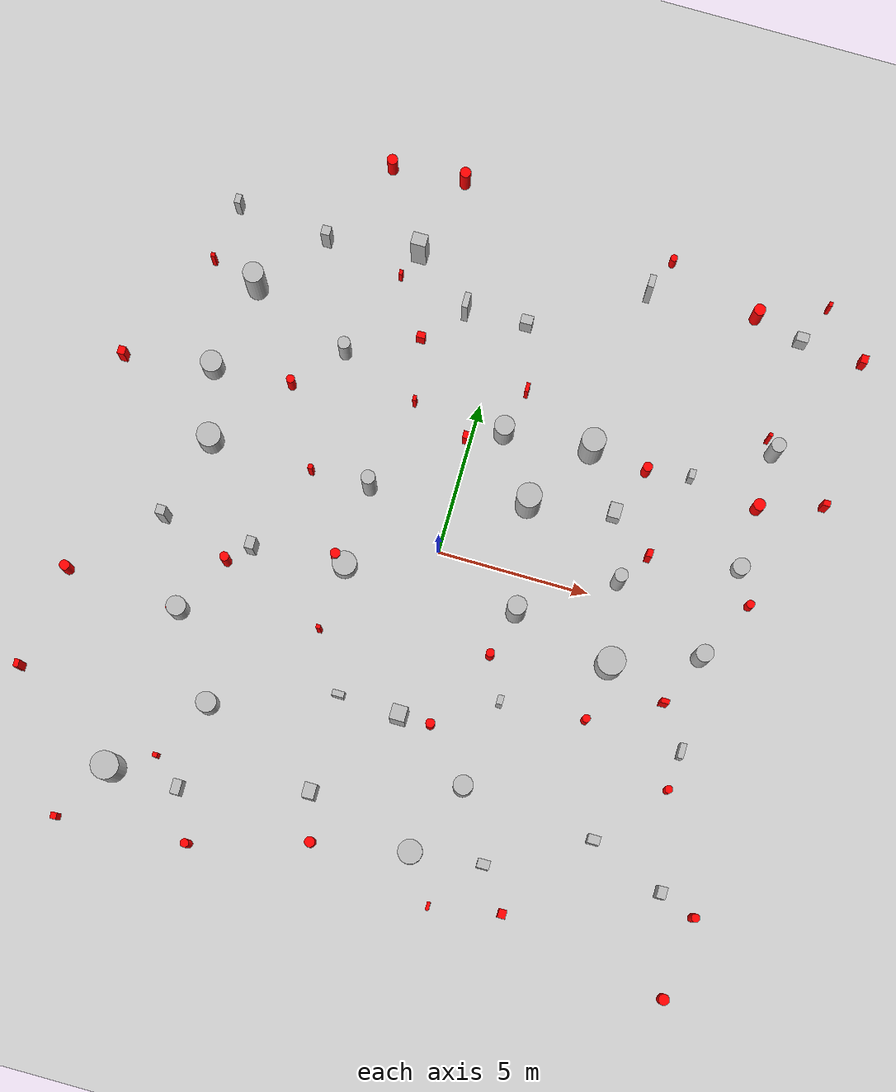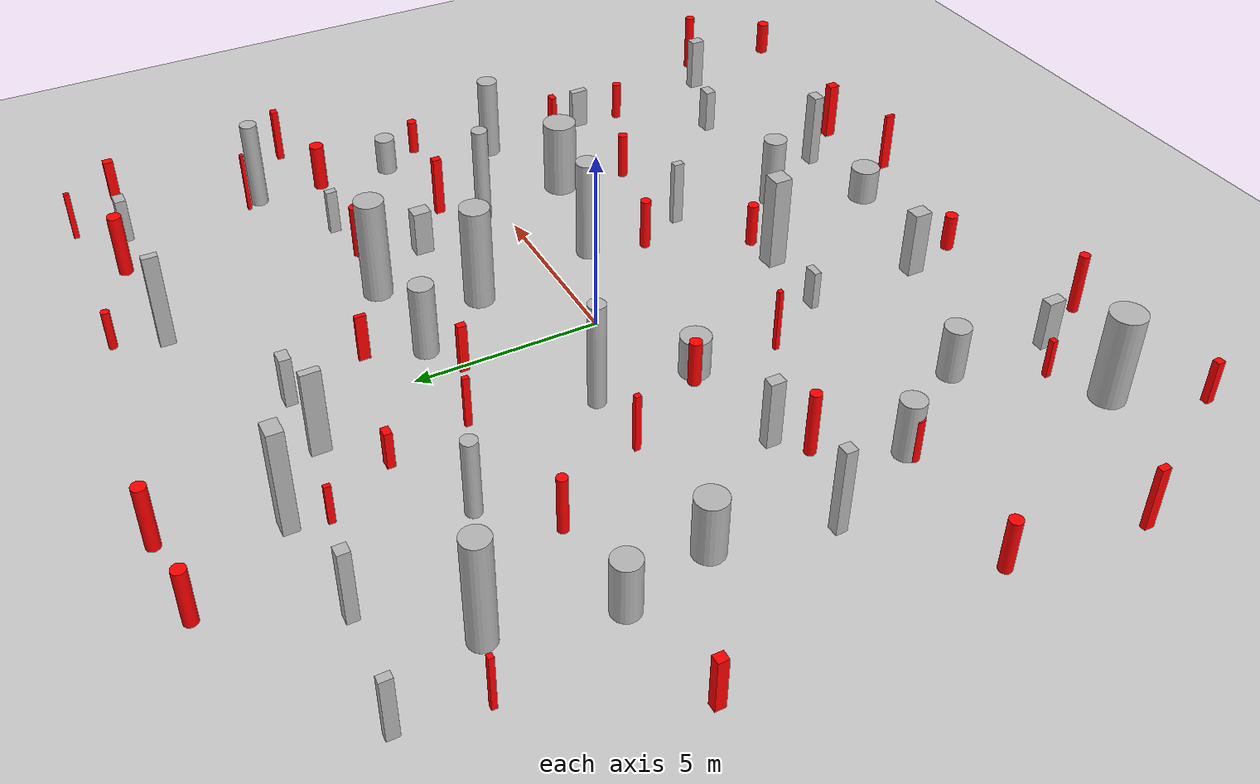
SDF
<sdf version="1.7">
 <world name="default">
  <model name="ground_plane">
   <static>1</static>
   <link name="link">
    <collision name="collision">
     <geometry><plane><normal>0 0 1</normal><size>100 100</size></plane></geometry>
     <surface>
      <contact><collide_bitmask>65535</collide_bitmask></contact>
      <friction><ode><mu>100</mu><mu2>50</mu2></ode></friction>
     </surface>
    </collision>
    <visual name="visual">
     <cast_shadows>0</cast_shadows>
     <geometry><plane><normal>0 0 1</normal><size>100 100</size></plane></geometry>
     <material>
      <script><uri>file://media/materials/scripts/gazebo.material</uri><name>Gazebo/Grey</name></script>
     </material>
    </visual>
   </link>
  </model>
  <model name="cylinder_0_0.7_0.7_2.1">
   <static>true</static>
   <pose>0.9762700785464951 4.30378732744839 1.0448831829968968 0 0 0</pose>
   <link name="link">
    <visual name="visual">
     <geometry>
      <cylinder><radius>0.3270964398016714</radius><length>2.0897663659937935</length></cylinder>
     </geometry>
    </visual>
   </link>
  </model>
  <model name="cylinder_1_0.6_0.6_2.9">
   <static>true</static>
   <pose>2.917882261333123 -1.2482557747461502 1.4636627605010293 0 0 0</pose>
   <link name="link">
    <visual name="visual">
     <geometry>
      <cylinder><radius>0.3150324556477333</radius><length>2.9273255210020586</length></cylinder>
     </geometry>
    </visual>
   </link>
  </model>
  <model name="cylinder_2_0.4_0.4_2.9">
   <static>true</static>
   <pose>5.834500761653292 0.5778983950580887 1.425596638292661 0 0 0</pose>
   <link name="link">
    <visual name="visual">
     <geometry>
      <cylinder><radius>0.2213108174593661</radius><length>2.851193276585322</length></cylinder>
     </geometry>
    </visual>
   </link>
  </model>
  <model name="cylinder_3_0.9_0.9_2.6">
   <static>true</static>
   <pose>-8.257414005969185 -9.595632051193485 1.2781567509498504 0 0 0</pose>
   <link name="link">
    <visual name="visual">
     <geometry>
      <cylinder><radius>0.46100364447404574</radius><length>2.5563135018997007</length></cylinder>
     </geometry>
    </visual>
   </link>
  </model>
  <model name="cylinder_4_0.5_0.5_2.6">
   <static>true</static>
   <pose>9.572366844655281 5.983171284334471 1.2805291762864555 0 0 0</pose>
   <link name="link">
    <visual name="visual">
     <geometry>
      <cylinder><radius>0.23548232776067998</radius><length>2.561058352572911</length></cylinder>
     </geometry>
    </visual>
   </link>
  </model>
  <model name="cylinder_5_0.6_0.6_2.0">
   <static>true</static>
   <pose>2.798420426550477 -7.132934251819072 1.0218483217500718 0 0 0</pose>
   <link name="link">
    <visual name="visual">
     <geometry>
      <cylinder><radius>0.3243985819971571</radius><length>2.0436966435001436</length></cylinder>
     </geometry>
    </visual>
   </link>
  </model>
  <model name="cylinder_6_0.4_0.4_2.1">
   <static>true</static>
   <pose>-4.70888775790746 5.484673788684333 1.0684339488686485 0 0 0</pose>
   <link name="link">
    <visual name="visual">
     <geometry>
      <cylinder><radius>0.20563694013090655</radius><length>2.136867897737297</length></cylinder>
     </geometry>
    </visual>
   </link>
  </model>
  <model name="cylinder_7_0.8_0.8_2.9">
   <static>true</static>
   <pose>2.352709941517542 2.2419144544484286 1.4437480785146242 0 0 0</pose>
   <link name="link">
    <visual name="visual">
     <geometry>
      <cylinder><radius>0.404546089731045</radius><length>2.8874961570292483</length></cylinder>
     </geometry>
    </visual>
   </link>
  </model>
  <model name="cylinder_8_0.8_0.8_1.1">
   <static>true</static>
   <pose>-2.80984198852428 -1.259360924013171 0.5602254716292698 0 0 0</pose>
   <link name="link">
    <visual name="visual">
     <geometry>
      <cylinder><radius>0.4000300146337003</radius><length>1.1204509432585397</length></cylinder>
     </geometry>
    </visual>
   </link>
  </model>
  <model name="cylinder_9_0.5_0.5_3.0">
   <static>true</static>
   <pose>-2.725784581147548 1.4039354083575937 1.4883738380592262 0 0 0</pose>
   <link name="link">
    <visual name="visual">
     <geometry>
      <cylinder><radius>0.23061344322440844</radius><length>2.9767476761184524</length></cylinder>
     </geometry>
    </visual>
   </link>
  </model>
  <model name="cylinder_10_0.7_0.7_1.5">
   <static>true</static>
   <pose>-5.822464878103306 -6.773809642300074 0.7532916025397821 0 0 0</pose>
   <link name="link">
    <visual name="visual">
     <geometry>
      <cylinder><radius>0.3398932318568919</radius><length>1.5065832050795642</length></cylinder>
     </geometry>
    </visual>
   </link>
  </model>
  <model name="cylinder_11_0.7_0.7_3.0">
   <static>true</static>
   <pose>-8.057974484138775 6.758898149976076 1.4764594650133958 0 0 0</pose>
   <link name="link">
    <visual name="visual">
     <geometry>
      <cylinder><radius>0.3405953604943105</radius><length>2.9529189300267915</length></cylinder>
     </geometry>
    </visual>
   </link>
  </model>
  <model name="cylinder_12_0.6_0.6_1.1">
   <static>true</static>
   <pose>9.535221763806742 2.0969103949009202 0.5391877922543207 0 0 0</pose>
   <link name="link">
    <visual name="visual">
     <geometry>
      <cylinder><radius>0.2848420887729229</radius><length>1.0783755845086413</length></cylinder>
     </geometry>
    </visual>
   </link>
  </model>
  <model name="cylinder_13_0.6_0.6_1.6">
   <static>true</static>
   <pose>-7.596068775736622 -4.077196049557101 0.817983179393976 0 0 0</pose>
   <link name="link">
    <visual name="visual">
     <geometry><cylinder><radius>0.324278898354401</radius><length>1.635966358787952</length></cylinder></geometry>
    </visual>
   </link>
  </model>
  <model name="cylinder_14_0.7_0.7_1.5">
   <static>true</static>
   <pose>-8.717050073024312 3.849442387400398 0.7653894909394454 0 0 0</pose>
   <link name="link">
    <visual name="visual">
     <geometry>
      <cylinder><radius>0.3569744160400099</radius><length>1.5307789818788908</length></cylinder>
     </geometry>
    </visual>
   </link>
  </model>
  <model name="cylinder_15_0.8_0.8_1.6">
   <static>true</static>
   <pose>-8.121189784831166 1.5189299111235854 0.8185689524513237 0 0 0</pose>
   <link name="link">
    <visual name="visual">
     <geometry>
      <cylinder><radius>0.4002231139891045</radius><length>1.6371379049026473</length></cylinder>
     </geometry>
    </visual>
   </link>
  </model>
  <model name="cylinder_16_0.8_0.8_1.0">
   <static>true</static>
   <pose>1.7302586962016626 -9.597849076250128 0.5046954761925471 0 0 0</pose>
   <link name="link">
    <visual name="visual">
     <geometry>
      <cylinder><radius>0.4033449610388691</radius><length>1.0093909523850941</length></cylinder>
     </geometry>
    </visual>
   </link>
  </model>
  <model name="cylinder_17_0.6_0.6_2.4">
   <static>true</static>
   <pose>9.054980230339702 -1.0574924276474533 1.1994792753175043 0 0 0</pose>
   <link name="link">
    <visual name="visual">
     <geometry>
      <cylinder><radius>0.2892310852565401</radius><length>2.3989585506350086</length></cylinder>
     </geometry>
    </visual>
   </link>
  </model>
  <model name="cylinder_18_0.9_0.9_2.2">
   <static>true</static>
   <pose>6.275956394049544 -2.0698851830603076 1.0812728726358587 0 0 0</pose>
   <link name="link">
    <visual name="visual">
     <geometry>
      <cylinder><radius>0.4645206085564558</radius><length>2.1625457452717174</length></cylinder>
     </geometry>
    </visual>
   </link>
  </model>
  <model name="cylinder_19_0.8_0.8_2.9">
   <static>true</static>
   <pose>3.850631801555318 4.50508559639281 1.4560836347232238 0 0 0</pose>
   <link name="link">
    <visual name="visual">
     <geometry>
      <cylinder><radius>0.3931970597688912</radius><length>2.9121672694464475</length></cylinder>
     </geometry>
    </visual>
   </link>
  </model>
  <model name="box_0_0.2_0.3_1.9">
   <static>true</static>
   <pose>3.2034707498537003 -4.198447855791119 0.9287687009457661 0 0 0</pose>
   <link name="link">
    <visual name="visual"><geometry><box><size>0.2 0.3 1.9</size></box></geometry></visual>
   </link>
  </model>
  <model name="box_1_0.2_0.5_2.4">
   <static>true</static>
   <pose>-1.2827014946874638 7.838467100313441 1.2038885835403663 0 0 0</pose>
   <link name="link">
    <visual name="visual"><geometry><box><size>0.2 0.5 2.4</size></box></geometry></visual>
   </link>
  </model>
  <model name="box_2_0.2_0.4_2.7">
   <static>true</static>
   <pose>4.2848259909822275 9.976940131357331 1.3681260573682144 0 0 0</pose>
   <link name="link">
    <visual name="visual"><geometry><box><size>0.2 0.4 2.7</size></box></geometry></visual>
   </link>
  </model>
  <model name="box_3_0.4_0.5_1.9">
   <static>true</static>
   <pose>-1.8563340554800067 -8.61666009089724 0.9535426826780689 0 0 0</pose>
   <link name="link">
    <visual name="visual"><geometry><box><size>0.4 0.5 1.9</size></box></geometry></visual>
   </link>
  </model>
  <model name="box_4_0.3_0.5_1.4">
   <static>true</static>
   <pose>-6.000069502071998 -9.62956411078772 0.7239246880603801 0 0 0</pose>
   <link name="link">
    <visual name="visual"><geometry><box><size>0.3 0.5 1.4</size></box></geometry></visual>
   </link>
  </model>
  <model name="box_5_0.4_0.3_2.2">
   <static>true</static>
   <pose>4.088288038470655 -9.363221409373843 1.1214784014997634 0 0 0</pose>
   <link name="link">
    <visual name="visual"><geometry><box><size>0.4 0.3 2.2</size></box></geometry></visual>
   </link>
  </model>
  <model name="box_6_0.3_0.3_2.0">
   <static>true</static>
   <pose>-6.276139882393277 8.887447799678672 0.9904588086175671 0 0 0</pose>
   <link name="link">
    <visual name="visual"><geometry><box><size>0.3 0.3 2.0</size></box></geometry></visual>
   </link>
  </model>
  <model name="box_7_0.3_0.3_2.4">
   <static>true</static>
   <pose>-8.839416793522489 -1.3116674888375854 1.1963434888154594 0 0 0</pose>
   <link name="link">
    <visual name="visual"><geometry><box><size>0.3 0.3 2.4</size></box></geometry></visual>
   </link>
  </model>
  <model name="box_8_0.4_0.3_1.4">
   <static>true</static>
   <pose>0.731584222174444 7.933425860806842 0.7168969843984739 0 0 0</pose>
   <link name="link">
    <visual name="visual"><geometry><box><size>0.4 0.3 1.4</size></box></geometry></visual>
   </link>
  </model>
  <model name="box_9_0.3_0.4_1.9">
   <static>true</static>
   <pose>-5.850598491177812 -1.5062906249698749 0.9635754243648107 0 0 0</pose>
   <link name="link">
    <visual name="visual"><geometry><box><size>0.3 0.4 1.9</size></box></geometry></visual>
   </link>
  </model>
  <model name="box_10_0.4_0.3_1.3">
   <static>true</static>
   <pose>7.277112118464629 -7.649362880759338 0.6320681063451533 0 0 0</pose>
   <link name="link">
    <visual name="visual"><geometry><box><size>0.4 0.3 1.3</size></box></geometry></visual>
   </link>
  </model>
  <model name="box_11_0.2_0.5_1.2">
   <static>true</static>
   <pose>9.23872757094458 -4.157049464149023 0.6002939422654978 0 0 0</pose>
   <link name="link">
    <visual name="visual"><geometry><box><size>0.2 0.5 1.2</size></box></geometry></visual>
   </link>
  </model>
  <model name="box_12_0.5_0.4_2.9">
   <static>true</static>
   <pose>-3.236820963263087 9.231403090829971 1.4493188224156814 0 0 0</pose>
   <link name="link">
    <visual name="visual"><geometry><box><size>0.5 0.4 2.9</size></box></geometry></visual>
   </link>
  </model>
  <model name="box_13_0.5_0.5_2.7">
   <static>true</static>
   <pose>0.22637965092912005 -5.513659420505215 1.3621915174216834 0 0 0</pose>
   <link name="link">
    <visual name="visual"><geometry><box><size>0.5 0.5 2.7</size></box></geometry></visual>
   </link>
  </model>
  <model name="box_14_0.4_0.2_1.1">
   <static>true</static>
   <pose>-1.8551765717238524 -5.355317156581146 0.5534271817868253 0 0 0</pose>
   <link name="link">
    <visual name="visual"><geometry><box><size>0.4 0.2 1.1</size></box></geometry></visual>
   </link>
  </model>
  <model name="box_15_0.2_0.3_1.3">
   <static>true</static>
   <pose>7.211023476575875 4.540885254226566 0.6314827992911276 0 0 0</pose>
   <link name="link">
    <visual name="visual"><geometry><box><size>0.2 0.3 1.3</size></box></geometry></visual>
   </link>
  </model>
  <model name="box_16_0.4_0.5_1.3">
   <static>true</static>
   <pose>5.135572854737784 2.721221108942826 0.6605388224852564 0 0 0</pose>
   <link name="link">
    <visual name="visual"><geometry><box><size>0.4 0.5 1.3</size></box></geometry></visual>
   </link>
  </model>
  <model name="box_17_0.2_0.3_1.7">
   <static>true</static>
   <pose>-9.333907469066077 9.17965443726947 0.8567068904025429 0 0 0</pose>
   <link name="link">
    <visual name="visual"><geometry><box><size>0.2 0.3 1.7</size></box></geometry></visual>
   </link>
  </model>
  <model name="box_18_0.4_0.3_1.3">
   <static>true</static>
   <pose>9.485124256361004 9.806900031217879 0.6629544260466054 0 0 0</pose>
   <link name="link">
    <visual name="visual"><geometry><box><size>0.4 0.3 1.3</size></box></geometry></visual>
   </link>
  </model>
  <model name="box_19_0.3_0.4_1.6">
   <static>true</static>
   <pose>9.78819554568863 -8.693915856964395 0.7883984973314939 0 0 0</pose>
   <link name="link">
    <visual name="visual"><geometry><box><size>0.3 0.4 1.6</size></box></geometry></visual>
   </link>
  </model>
  <model name="dynamic_cylinder_0_0.3_0.3_1.6">
   <static>true</static>
   <pose>-6.094483560216853 3.9806188214205047 0.7826298825091915 0 0 0</pose>
   <link name="link">
    <visual name="visual">
     <geometry>
      <cylinder><radius>0.13605455604858924</radius><length>1.565259765018383</length></cylinder>
     </geometry>
     <material><ambient>1 0 0 1</ambient><diffuse>1 0 0 1</diffuse><specular>0.5 0.5 0.5 1</specular></material>
    </visual>
   </link>
   <plugin name="obstacle_motion" filename="libobstaclePathPlugin.so">
    <orientation>false</orientation>
    <loop>0</loop>
    <velocity>0.551515</velocity>
    <path>
     <waypoint>-6.094483560216853 3.9806188214205047 0.7826298825091915</waypoint>
     <waypoint>-1.8218642775396177 1.3125074078740546 0.7826298825091915</waypoint>
    </path>
   </plugin>
  </model>
  <model name="dynamic_cylinder_1_0.4_0.4_1.8">
   <static>true</static>
   <pose>7.887765949337705 10.199205886876612 0.894196571057319 0 0 0</pose>
   <link name="link">
    <visual name="visual">
     <geometry>
      <cylinder><radius>0.1904948345549927</radius><length>1.788393142114638</length></cylinder>
     </geometry>
     <material><ambient>1 0 0 1</ambient><diffuse>1 0 0 1</diffuse><specular>0.5 0.5 0.5 1</specular></material>
    </visual>
   </link>
   <plugin name="obstacle_motion" filename="libobstaclePathPlugin.so">
    <orientation>false</orientation>
    <loop>0</loop>
    <velocity>0.663636</velocity>
    <path>
     <waypoint>7.887765949337705 10.199205886876612 0.894196571057319</waypoint>
     <waypoint>-6.416952172085628 -3.6355351321784823 0.894196571057319</waypoint>
    </path>
   </plugin>
  </model>
  <model name="dynamic_cylinder_2_0.3_0.3_1.6">
   <static>true</static>
   <pose>-4.882649638463283 11.808269841947379 0.7759073060311001 0 0 0</pose>
   <link name="link">
    <visual name="visual">
     <geometry>
      <cylinder><radius>0.17307090991274762</radius><length>1.5518146120622003</length></cylinder>
     </geometry>
     <material><ambient>1 0 0 1</ambient><diffuse>1 0 0 1</diffuse><specular>0.5 0.5 0.5 1</specular></material>
    </visual>
   </link>
   <plugin name="obstacle_motion" filename="libobstaclePathPlugin.so">
    <orientation>false</orientation>
    <loop>0</loop>
    <velocity>0.775758</velocity>
    <path>
     <waypoint>-4.882649638463283 11.808269841947379 0.7759073060311001</waypoint>
     <waypoint>-9.458252282826427 10.82286266532946 0.7759073060311001</waypoint>
    </path>
   </plugin>
  </model>
  <model name="dynamic_cylinder_3_0.3_0.3_1.1">
   <static>true</static>
   <pose>9.16128509601215 -5.4615145088169 0.5687412396190572 0 0 0</pose>
   <link name="link">
    <visual name="visual">
     <geometry>
      <cylinder><radius>0.13044684073773197</radius><length>1.1374824792381144</length></cylinder>
     </geometry>
     <material><ambient>1 0 0 1</ambient><diffuse>1 0 0 1</diffuse><specular>0.5 0.5 0.5 1</specular></material>
    </visual>
   </link>
   <plugin name="obstacle_motion" filename="libobstaclePathPlugin.so">
    <orientation>false</orientation>
    <loop>0</loop>
    <velocity>0.584848</velocity>
    <path>
     <waypoint>9.16128509601215 -5.4615145088169 0.5687412396190572</waypoint>
     <waypoint>-3.0168916002980133 5.970918180963196 0.5687412396190572</waypoint>
    </path>
   </plugin>
  </model>
  <model name="dynamic_cylinder_4_0.2_0.2_1.1">
   <static>true</static>
   <pose>4.789801445394033 11.23117359850145 0.5609418822750922 0 0 0</pose>
   <link name="link">
    <visual name="visual">
     <geometry>
      <cylinder><radius>0.11312893284732561</radius><length>1.1218837645501845</length></cylinder>
     </geometry>
     <material><ambient>1 0 0 1</ambient><diffuse>1 0 0 1</diffuse><specular>0.5 0.5 0.5 1</specular></material>
    </visual>
   </link>
   <plugin name="obstacle_motion" filename="libobstaclePathPlugin.so">
    <orientation>false</orientation>
    <loop>0</loop>
    <velocity>0.696970</velocity>
    <path>
     <waypoint>4.789801445394033 11.23117359850145 0.5609418822750922</waypoint>
     <waypoint>-1.1562796159257687 -10.299125323578998 0.5609418822750922</waypoint>
    </path>
   </plugin>
  </model>
  <model name="dynamic_cylinder_5_0.3_0.3_1.5">
   <static>true</static>
   <pose>2.498827296501169 -2.812606580211501 0.7368921675047347 0 0 0</pose>
   <link name="link">
    <visual name="visual">
     <geometry>
      <cylinder><radius>0.14067333458357484</radius><length>1.4737843350094695</length></cylinder>
     </geometry>
     <material><ambient>1 0 0 1</ambient><diffuse>1 0 0 1</diffuse><specular>0.5 0.5 0.5 1</specular></material>
    </visual>
   </link>
   <plugin name="obstacle_motion" filename="libobstaclePathPlugin.so">
    <orientation>false</orientation>
    <loop>0</loop>
    <velocity>0.506061</velocity>
    <path>
     <waypoint>2.498827296501169 -2.812606580211501 0.7368921675047347</waypoint>
     <waypoint>11.227072123164046 1.125237640066132 0.7368921675047347</waypoint>
    </path>
   </plugin>
  </model>
  <model name="dynamic_cylinder_6_0.3_0.3_1.2">
   <static>true</static>
   <pose>1.2498786406072995 -5.480333577452499 0.6241523303919245 0 0 0</pose>
   <link name="link">
    <visual name="visual">
     <geometry>
      <cylinder><radius>0.15249704422542643</radius><length>1.248304660783849</length></cylinder>
     </geometry>
     <material><ambient>1 0 0 1</ambient><diffuse>1 0 0 1</diffuse><specular>0.5 0.5 0.5 1</specular></material>
    </visual>
   </link>
   <plugin name="obstacle_motion" filename="libobstaclePathPlugin.so">
    <orientation>false</orientation>
    <loop>0</loop>
    <velocity>0.618182</velocity>
    <path>
     <waypoint>1.2498786406072995 -5.480333577452499 0.6241523303919245</waypoint>
     <waypoint>-2.3588751508896326 -6.0380768380086955 0.6241523303919245</waypoint>
    </path>
   </plugin>
  </model>
  <model name="dynamic_cylinder_7_0.3_0.3_1.4">
   <static>true</static>
   <pose>6.014280550295702 -3.995820821009392 0.6784542050636808 0 0 0</pose>
   <link name="link">
    <visual name="visual">
     <geometry>
      <cylinder><radius>0.1348475989033497</radius><length>1.3569084101273616</length></cylinder>
     </geometry>
     <material><ambient>1 0 0 1</ambient><diffuse>1 0 0 1</diffuse><specular>0.5 0.5 0.5 1</specular></material>
    </visual>
   </link>
   <plugin name="obstacle_motion" filename="libobstaclePathPlugin.so">
    <orientation>false</orientation>
    <loop>0</loop>
    <velocity>0.730303</velocity>
    <path>
     <waypoint>6.014280550295702 -3.995820821009392 0.6784542050636808</waypoint>
     <waypoint>8.695645124061656 -10.831432896587316 0.6784542050636808</waypoint>
    </path>
   </plugin>
  </model>
  <model name="dynamic_cylinder_8_0.3_0.3_1.5">
   <static>true</static>
   <pose>5.762340614824382 4.332347547427823 0.7704969929109852 0 0 0</pose>
   <link name="link">
    <visual name="visual">
     <geometry>
      <cylinder><radius>0.15436780538280953</radius><length>1.5409939858219703</length></cylinder>
     </geometry>
     <material><ambient>1 0 0 1</ambient><diffuse>1 0 0 1</diffuse><specular>0.5 0.5 0.5 1</specular></material>
    </visual>
   </link>
   <plugin name="obstacle_motion" filename="libobstaclePathPlugin.so">
    <orientation>false</orientation>
    <loop>0</loop>
    <velocity>0.539394</velocity>
    <path>
     <waypoint>5.762340614824382 4.332347547427823 0.7704969929109852</waypoint>
     <waypoint>5.052681665336294 -7.081831512967158 0.7704969929109852</waypoint>
    </path>
   </plugin>
  </model>
  <model name="dynamic_cylinder_9_0.3_0.3_1.7">
   <static>true</static>
   <pose>-5.215208377307121 -11.274353807856418 0.8688445847068773 0 0 0</pose>
   <link name="link">
    <visual name="visual">
     <geometry>
      <cylinder><radius>0.14059423219682837</radius><length>1.7376891694137546</length></cylinder>
     </geometry>
     <material><ambient>1 0 0 1</ambient><diffuse>1 0 0 1</diffuse><specular>0.5 0.5 0.5 1</specular></material>
    </visual>
   </link>
   <plugin name="obstacle_motion" filename="libobstaclePathPlugin.so">
    <orientation>false</orientation>
    <loop>0</loop>
    <velocity>0.651515</velocity>
    <path>
     <waypoint>-5.215208377307121 -11.274353807856418 0.8688445847068773</waypoint>
     <waypoint>-11.81078151579743 -3.0557023242961066 0.8688445847068773</waypoint>
    </path>
   </plugin>
  </model>
  <model name="dynamic_cylinder_10_0.3_0.3_1.5">
   <static>true</static>
   <pose>-11.416483206956213 -3.7773363758018323 0.7308560976081367 0 0 0</pose>
   <link name="link">
    <visual name="visual">
     <geometry>
      <cylinder><radius>0.16719571405958222</radius><length>1.4617121952162735</length></cylinder>
     </geometry>
     <material><ambient>1 0 0 1</ambient><diffuse>1 0 0 1</diffuse><specular>0.5 0.5 0.5 1</specular></material>
    </visual>
   </link>
   <plugin name="obstacle_motion" filename="libobstaclePathPlugin.so">
    <orientation>false</orientation>
    <loop>0</loop>
    <velocity>0.763636</velocity>
    <path>
     <waypoint>-11.416483206956213 -3.7773363758018323 0.7308560976081367</waypoint>
     <waypoint>-5.302369242513639 -6.966001208264758 0.7308560976081367</waypoint>
    </path>
   </plugin>
  </model>
  <model name="dynamic_cylinder_11_0.4_0.4_1.0">
   <static>true</static>
   <pose>10.772664497292176 -11.935122866555936 0.5067486693480159 0 0 0</pose>
   <link name="link">
    <visual name="visual">
     <geometry>
      <cylinder><radius>0.18136786497018637</radius><length>1.0134973386960318</length></cylinder>
     </geometry>
     <material><ambient>1 0 0 1</ambient><diffuse>1 0 0 1</diffuse><specular>0.5 0.5 0.5 1</specular></material>
    </visual>
   </link>
   <plugin name="obstacle_motion" filename="libobstaclePathPlugin.so">
    <orientation>false</orientation>
    <loop>0</loop>
    <velocity>0.572727</velocity>
    <path>
     <waypoint>10.772664497292176 -11.935122866555936 0.5067486693480159</waypoint>
     <waypoint>2.4094136903433494 2.1297506392869163 0.5067486693480159</waypoint>
    </path>
   </plugin>
  </model>
  <model name="dynamic_cylinder_12_0.3_0.3_1.8">
   <static>true</static>
   <pose>-6.533771963091337 -2.152762495436985 0.892232053114913 0 0 0</pose>
   <link name="link">
    <visual name="visual">
     <geometry>
      <cylinder><radius>0.15027207611453242</radius><length>1.784464106229826</length></cylinder>
     </geometry>
     <material><ambient>1 0 0 1</ambient><diffuse>1 0 0 1</diffuse><specular>0.5 0.5 0.5 1</specular></material>
    </visual>
   </link>
   <plugin name="obstacle_motion" filename="libobstaclePathPlugin.so">
    <orientation>false</orientation>
    <loop>0</loop>
    <velocity>0.684848</velocity>
    <path>
     <waypoint>-6.533771963091337 -2.152762495436985 0.892232053114913</waypoint>
     <waypoint>9.28705874921802 2.8518280377930356 0.892232053114913</waypoint>
    </path>
   </plugin>
  </model>
  <model name="dynamic_cylinder_13_0.3_0.3_1.0">
   <static>true</static>
   <pose>10.136351563119192 0.9931390501712585 0.5144135269714278 0 0 0</pose>
   <link name="link">
    <visual name="visual">
     <geometry>
      <cylinder><radius>0.1389134677101186</radius><length>1.0288270539428557</length></cylinder>
     </geometry>
     <material><ambient>1 0 0 1</ambient><diffuse>1 0 0 1</diffuse><specular>0.5 0.5 0.5 1</specular></material>
    </visual>
   </link>
   <plugin name="obstacle_motion" filename="libobstaclePathPlugin.so">
    <orientation>false</orientation>
    <loop>0</loop>
    <velocity>0.796970</velocity>
    <path>
     <waypoint>10.136351563119192 0.9931390501712585 0.5144135269714278</waypoint>
     <waypoint>7.917536846480235 11.238873847063136 0.5144135269714278</waypoint>
    </path>
   </plugin>
  </model>
  <model name="dynamic_cylinder_14_0.3_0.3_1.0">
   <static>true</static>
   <pose>-1.4336699320921973 -10.16431754327315 0.524431414826715 0 0 0</pose>
   <link name="link">
    <visual name="visual">
     <geometry><cylinder><radius>0.1739883917829101</radius><length>1.04886282965343</length></cylinder></geometry>
     <material><ambient>1 0 0 1</ambient><diffuse>1 0 0 1</diffuse><specular>0.5 0.5 0.5 1</specular></material>
    </visual>
   </link>
   <plugin name="obstacle_motion" filename="libobstaclePathPlugin.so">
    <orientation>false</orientation>
    <loop>0</loop>
    <velocity>0.606061</velocity>
    <path>
     <waypoint>-1.4336699320921973 -10.16431754327315 0.524431414826715</waypoint>
     <waypoint>-6.062429867060311 -11.049227458091575 0.524431414826715</waypoint>
    </path>
   </plugin>
  </model>
  <model name="dynamic_cylinder_15_0.4_0.4_1.4">
   <static>true</static>
   <pose>9.553496573129642 4.141975471116513 0.6882595796855638 0 0 0</pose>
   <link name="link">
    <visual name="visual">
     <geometry>
      <cylinder><radius>0.19795269293354587</radius><length>1.3765191593711277</length></cylinder>
     </geometry>
     <material><ambient>1 0 0 1</ambient><diffuse>1 0 0 1</diffuse><specular>0.5 0.5 0.5 1</specular></material>
    </visual>
   </link>
   <plugin name="obstacle_motion" filename="libobstaclePathPlugin.so">
    <orientation>false</orientation>
    <loop>0</loop>
    <velocity>0.718182</velocity>
    <path>
     <waypoint>9.553496573129642 4.141975471116513 0.6882595796855638</waypoint>
     <waypoint>-4.693287255662922 11.95109403188816 0.6882595796855638</waypoint>
    </path>
   </plugin>
  </model>
  <model name="dynamic_cylinder_16_0.3_0.3_1.2">
   <static>true</static>
   <pose>-7.808198750519861 -4.128287978206088 0.6135999907048404 0 0 0</pose>
   <link name="link">
    <visual name="visual">
     <geometry>
      <cylinder><radius>0.15145127432987568</radius><length>1.2271999814096808</length></cylinder>
     </geometry>
     <material><ambient>1 0 0 1</ambient><diffuse>1 0 0 1</diffuse><specular>0.5 0.5 0.5 1</specular></material>
    </visual>
   </link>
   <plugin name="obstacle_motion" filename="libobstaclePathPlugin.so">
    <orientation>false</orientation>
    <loop>0</loop>
    <velocity>0.527273</velocity>
    <path>
     <waypoint>-7.808198750519861 -4.128287978206088 0.6135999907048404</waypoint>
     <waypoint>-10.483017159872865 2.573984976276984 0.6135999907048404</waypoint>
    </path>
   </plugin>
  </model>
  <model name="dynamic_cylinder_17_0.3_0.3_1.3">
   <static>true</static>
   <pose>-3.169738067111009 -1.0435226096962715 0.6373566915163664 0 0 0</pose>
   <link name="link">
    <visual name="visual">
     <geometry>
      <cylinder><radius>0.16591764718500285</radius><length>1.2747133830327328</length></cylinder>
     </geometry>
     <material><ambient>1 0 0 1</ambient><diffuse>1 0 0 1</diffuse><specular>0.5 0.5 0.5 1</specular></material>
    </visual>
   </link>
   <plugin name="obstacle_motion" filename="libobstaclePathPlugin.so">
    <orientation>false</orientation>
    <loop>0</loop>
    <velocity>0.639394</velocity>
    <path>
     <waypoint>-3.169738067111009 -1.0435226096962715 0.6373566915163664</waypoint>
     <waypoint>11.291848646303464 -8.797453638105504 0.6373566915163664</waypoint>
    </path>
   </plugin>
  </model>
  <model name="dynamic_cylinder_18_0.4_0.4_1.8">
   <static>true</static>
   <pose>-2.465838067966992 11.982671854132107 0.8904902653815281 0 0 0</pose>
   <link name="link">
    <visual name="visual">
     <geometry>
      <cylinder><radius>0.17645619743577087</radius><length>1.7809805307630562</length></cylinder>
     </geometry>
     <material><ambient>1 0 0 1</ambient><diffuse>1 0 0 1</diffuse><specular>0.5 0.5 0.5 1</specular></material>
    </visual>
   </link>
   <plugin name="obstacle_motion" filename="libobstaclePathPlugin.so">
    <orientation>false</orientation>
    <loop>0</loop>
    <velocity>0.751515</velocity>
    <path>
     <waypoint>-2.465838067966992 11.982671854132107 0.8904902653815281</waypoint>
     <waypoint>5.313760031038861 3.3019846687390277 0.8904902653815281</waypoint>
    </path>
   </plugin>
  </model>
  <model name="dynamic_cylinder_19_0.3_0.3_1.7">
   <static>true</static>
   <pose>11.00978215335823 -9.184308470764535 0.8743328320867154 0 0 0</pose>
   <link name="link">
    <visual name="visual">
     <geometry>
      <cylinder><radius>0.1399801692224526</radius><length>1.7486656641734308</length></cylinder>
     </geometry>
     <material><ambient>1 0 0 1</ambient><diffuse>1 0 0 1</diffuse><specular>0.5 0.5 0.5 1</specular></material>
    </visual>
   </link>
   <plugin name="obstacle_motion" filename="libobstaclePathPlugin.so">
    <orientation>false</orientation>
    <loop>0</loop>
    <velocity>0.560606</velocity>
    <path>
     <waypoint>11.00978215335823 -9.184308470764535 0.8743328320867154</waypoint>
     <waypoint>2.152673352325218 5.889553774735031 0.8743328320867154</waypoint>
    </path>
   </plugin>
  </model>
  <model name="dynamic_box_0_0.3_0.2_1.0">
   <static>true</static>
   <pose>-2.4499532439614953 6.588022917220847 0.5312582238133927 0 0 0</pose>
   <link name="link">
    <visual name="visual">
     <geometry><box><size>0.2826568681770961 0.20491541349572517 1.0343249523220466</size></box></geometry>
     <material><ambient>1 0 0 1</ambient><diffuse>1 0 0 1</diffuse><specular>0.5 0.5 0.5 1</specular></material>
    </visual>
   </link>
   <plugin name="obstacle_motion" filename="libobstaclePathPlugin.so">
    <orientation>false</orientation>
    <loop>0</loop>
    <velocity>0.793939</velocity>
    <path>
     <waypoint>-2.4499532439614953 6.588022917220847 0.5312582238133927</waypoint>
     <waypoint>11.216107248887571 8.66695219357888 0.5789281744179476</waypoint>
    </path>
   </plugin>
  </model>
  <model name="dynamic_box_1_0.2_0.3_1.8">
   <static>true</static>
   <pose>-11.95044874621388 -7.226127967995369 0.9747410708006319 0 0 0</pose>
   <link name="link">
    <visual name="visual">
     <geometry><box><size>0.16593023151628253 0.25835228423607415 1.7582575096892716</size></box></geometry>
     <material><ambient>1 0 0 1</ambient><diffuse>1 0 0 1</diffuse><specular>0.5 0.5 0.5 1</specular></material>
    </visual>
   </link>
   <plugin name="obstacle_motion" filename="libobstaclePathPlugin.so">
    <orientation>false</orientation>
    <loop>0</loop>
    <velocity>0.603030</velocity>
    <path>
     <waypoint>-11.95044874621388 -7.226127967995369 0.9747410708006319</waypoint>
     <waypoint>-4.069426257531747 3.321362538646765 0.9072147043078601</waypoint>
    </path>
   </plugin>
  </model>
  <model name="dynamic_box_2_0.2_0.2_1.2">
   <static>true</static>
   <pose>-9.514116877239069 -11.565687403164596 0.6787199957223198 0 0 0</pose>
   <link name="link">
    <visual name="visual">
     <geometry><box><size>0.19725441726586296 0.21763029208705986 1.239322915635053</size></box></geometry>
     <material><ambient>1 0 0 1</ambient><diffuse>1 0 0 1</diffuse><specular>0.5 0.5 0.5 1</specular></material>
    </visual>
   </link>
   <plugin name="obstacle_motion" filename="libobstaclePathPlugin.so">
    <orientation>false</orientation>
    <loop>0</loop>
    <velocity>0.715152</velocity>
    <path>
     <waypoint>-9.514116877239069 -11.565687403164596 0.6787199957223198</waypoint>
     <waypoint>-1.547243027257597 7.168541973213664 0.7120070116379371</waypoint>
    </path>
   </plugin>
  </model>
  <model name="dynamic_box_3_0.2_0.2_1.6">
   <static>true</static>
   <pose>11.612491912358802 4.735926019921237 0.8270611917364601 0 0 0</pose>
   <link name="link">
    <visual name="visual">
     <geometry><box><size>0.23293311730688773 0.18461088803322423 1.5762126820038065</size></box></geometry>
     <material><ambient>1 0 0 1</ambient><diffuse>1 0 0 1</diffuse><specular>0.5 0.5 0.5 1</specular></material>
    </visual>
   </link>
   <plugin name="obstacle_motion" filename="libobstaclePathPlugin.so">
    <orientation>false</orientation>
    <loop>0</loop>
    <velocity>0.524242</velocity>
    <path>
     <waypoint>11.612491912358802 4.735926019921237 0.8270611917364601</waypoint>
     <waypoint>-5.669575525188909 10.67101724213098 0.8016611843127539</waypoint>
    </path>
   </plugin>
  </model>
  <model name="dynamic_box_4_0.1_0.1_1.5">
   <static>true</static>
   <pose>-9.633351150652535 7.225797126127311 0.7549822637175555 0 0 0</pose>
   <link name="link">
    <visual name="visual">
     <geometry><box><size>0.13396390063434294 0.12967578753547512 1.5017285691694866</size></box></geometry>
     <material><ambient>1 0 0 1</ambient><diffuse>1 0 0 1</diffuse><specular>0.5 0.5 0.5 1</specular></material>
    </visual>
   </link>
   <plugin name="obstacle_motion" filename="libobstaclePathPlugin.so">
    <orientation>false</orientation>
    <loop>0</loop>
    <velocity>0.636364</velocity>
    <path>
     <waypoint>-9.633351150652535 7.225797126127311 0.7549822637175555</waypoint>
     <waypoint>7.594104749144538 7.381531299836965 0.7559650154676189</waypoint>
    </path>
   </plugin>
  </model>
  <model name="dynamic_box_5_0.2_0.3_1.8">
   <static>true</static>
   <pose>6.558219025608558 1.6246259720842566 0.9736023682772382 0 0 0</pose>
   <link name="link">
    <visual name="visual">
     <geometry><box><size>0.19164245195172241 0.25148131116434513 1.75060490957117</size></box></geometry>
     <material><ambient>1 0 0 1</ambient><diffuse>1 0 0 1</diffuse><specular>0.5 0.5 0.5 1</specular></material>
    </visual>
   </link>
   <plugin name="obstacle_motion" filename="libobstaclePathPlugin.so">
    <orientation>false</orientation>
    <loop>0</loop>
    <velocity>0.748485</velocity>
    <path>
     <waypoint>6.558219025608558 1.6246259720842566 0.9736023682772382</waypoint>
     <waypoint>11.57394665492026 11.824007843142393 0.8871640066221615</waypoint>
    </path>
   </plugin>
  </model>
  <model name="dynamic_box_6_0.3_0.2_1.8">
   <static>true</static>
   <pose>8.283698087897289 -2.8136587381734834 0.9009054142079997 0 0 0</pose>
   <link name="link">
    <visual name="visual">
     <geometry><box><size>0.27342290831873256 0.1588532328259378 1.7968570168081497</size></box></geometry>
     <material><ambient>1 0 0 1</ambient><diffuse>1 0 0 1</diffuse><specular>0.5 0.5 0.5 1</specular></material>
    </visual>
   </link>
   <plugin name="obstacle_motion" filename="libobstaclePathPlugin.so">
    <orientation>false</orientation>
    <loop>0</loop>
    <velocity>0.557576</velocity>
    <path>
     <waypoint>8.283698087897289 -2.8136587381734834 0.9009054142079997</waypoint>
     <waypoint>7.944746735889076 3.852868251468964 0.9136649567692058</waypoint>
    </path>
   </plugin>
  </model>
  <model name="dynamic_box_7_0.3_0.3_1.7">
   <static>true</static>
   <pose>5.084890821439728 -10.710394863510352 0.8928533133938285 0 0 0</pose>
   <link name="link">
    <visual name="visual">
     <geometry><box><size>0.2549495228384997 0.2988466166441524 1.7064620778553081</size></box></geometry>
     <material><ambient>1 0 0 1</ambient><diffuse>1 0 0 1</diffuse><specular>0.5 0.5 0.5 1</specular></material>
    </visual>
   </link>
   <plugin name="obstacle_motion" filename="libobstaclePathPlugin.so">
    <orientation>false</orientation>
    <loop>0</loop>
    <velocity>0.669697</velocity>
    <path>
     <waypoint>5.084890821439728 -10.710394863510352 0.8928533133938285</waypoint>
     <waypoint>-7.981540332971059 7.725693801788857 0.9232839012094404</waypoint>
    </path>
   </plugin>
  </model>
  <model name="dynamic_box_8_0.1_0.3_1.8">
   <static>true</static>
   <pose>2.754477267463173 -11.108889506605252 0.8857501630441007 0 0 0</pose>
   <link name="link">
    <visual name="visual">
     <geometry><box><size>0.10891422219753283 0.28265671927340674 1.7686500230581423</size></box></geometry>
     <material><ambient>1 0 0 1</ambient><diffuse>1 0 0 1</diffuse><specular>0.5 0.5 0.5 1</specular></material>
    </visual>
   </link>
   <plugin name="obstacle_motion" filename="libobstaclePathPlugin.so">
    <orientation>false</orientation>
    <loop>0</loop>
    <velocity>0.781818</velocity>
    <path>
     <waypoint>2.754477267463173 -11.108889506605252 0.8857501630441007</waypoint>
     <waypoint>-3.789506995109072 7.763321257620891 0.9709384821615443</waypoint>
    </path>
   </plugin>
  </model>
  <model name="dynamic_box_9_0.1_0.2_1.6">
   <static>true</static>
   <pose>-4.678879239291322 1.391697614631184 0.9055223540851829 0 0 0</pose>
   <link name="link">
    <visual name="visual">
     <geometry><box><size>0.14750462759726995 0.15426122025169325 1.6145557315702237</size></box></geometry>
     <material><ambient>1 0 0 1</ambient><diffuse>1 0 0 1</diffuse><specular>0.5 0.5 0.5 1</specular></material>
    </visual>
   </link>
   <plugin name="obstacle_motion" filename="libobstaclePathPlugin.so">
    <orientation>false</orientation>
    <loop>0</loop>
    <velocity>0.590909</velocity>
    <path>
     <waypoint>-4.678879239291322 1.391697614631184 0.9055223540851829</waypoint>
     <waypoint>-2.3892351663378406 3.980913559436157 0.8473658221483104</waypoint>
    </path>
   </plugin>
  </model>
  <model name="dynamic_box_10_0.1_0.2_1.5">
   <static>true</static>
   <pose>-2.0692747234016142 4.473125520011351 0.7606252336550268 0 0 0</pose>
   <link name="link">
    <visual name="visual">
     <geometry><box><size>0.11564921993809377 0.17425738885649986 1.462072072034679</size></box></geometry>
     <material><ambient>1 0 0 1</ambient><diffuse>1 0 0 1</diffuse><specular>0.5 0.5 0.5 1</specular></material>
    </visual>
   </link>
   <plugin name="obstacle_motion" filename="libobstaclePathPlugin.so">
    <orientation>false</orientation>
    <loop>0</loop>
    <velocity>0.703030</velocity>
    <path>
     <waypoint>-2.0692747234016142 4.473125520011351 0.7606252336550268</waypoint>
     <waypoint>-4.720993885928014 -3.458660288619164 0.8120662441716627</waypoint>
    </path>
   </plugin>
  </model>
  <model name="dynamic_box_11_0.1_0.1_1.8">
   <static>true</static>
   <pose>9.294795629644462 6.3616787797953585 0.927506470030102 0 0 0</pose>
   <link name="link">
    <visual name="visual">
     <geometry><box><size>0.12366988680389382 0.10503805785810123 1.7922948177116638</size></box></geometry>
     <material><ambient>1 0 0 1</ambient><diffuse>1 0 0 1</diffuse><specular>0.5 0.5 0.5 1</specular></material>
    </visual>
   </link>
   <plugin name="obstacle_motion" filename="libobstaclePathPlugin.so">
    <orientation>false</orientation>
    <loop>0</loop>
    <velocity>0.512121</velocity>
    <path>
     <waypoint>9.294795629644462 6.3616787797953585 0.927506470030102</waypoint>
     <waypoint>-3.227063325166167 -7.169597621739229 0.9448622215475694</waypoint>
    </path>
   </plugin>
  </model>
  <model name="dynamic_box_12_0.2_0.2_1.1">
   <static>true</static>
   <pose>-6.963348627116593 -8.82466380352649 0.5729930844787706 0 0 0</pose>
   <link name="link">
    <visual name="visual">
     <geometry><box><size>0.15975006217038817 0.1510127570633279 1.10733891046263</size></box></geometry>
     <material><ambient>1 0 0 1</ambient><diffuse>1 0 0 1</diffuse><specular>0.5 0.5 0.5 1</specular></material>
    </visual>
   </link>
   <plugin name="obstacle_motion" filename="libobstaclePathPlugin.so">
    <orientation>false</orientation>
    <loop>0</loop>
    <velocity>0.624242</velocity>
    <path>
     <waypoint>-6.963348627116593 -8.82466380352649 0.5729930844787706</waypoint>
     <waypoint>4.4512115019148055 -10.812006137734375 0.5638549167561367</waypoint>
    </path>
   </plugin>
  </model>
  <model name="dynamic_box_13_0.2_0.2_1.4">
   <static>true</static>
   <pose>-0.15823290505972487 3.7690482459941563 0.7419789868610605 0 0 0</pose>
   <link name="link">
    <visual name="visual">
     <geometry><box><size>0.17940273335552667 0.24088030788023473 1.3917479298916393</size></box></geometry>
     <material><ambient>1 0 0 1</ambient><diffuse>1 0 0 1</diffuse><specular>0.5 0.5 0.5 1</specular></material>
    </visual>
   </link>
   <plugin name="obstacle_motion" filename="libobstaclePathPlugin.so">
    <orientation>false</orientation>
    <loop>0</loop>
    <velocity>0.736364</velocity>
    <path>
     <waypoint>-0.15823290505972487 3.7690482459941563 0.7419789868610605</waypoint>
     <waypoint>10.443852289867813 9.234355735185119 0.7660717244624393</waypoint>
    </path>
   </plugin>
  </model>
  <model name="dynamic_box_14_0.2_0.3_1.3">
   <static>true</static>
   <pose>11.60241547762983 9.651149155301571 0.673805844614612 0 0 0</pose>
   <link name="link">
    <visual name="visual">
     <geometry><box><size>0.23430553935315163 0.26859465928021686 1.2558671115065234</size></box></geometry>
     <material><ambient>1 0 0 1</ambient><diffuse>1 0 0 1</diffuse><specular>0.5 0.5 0.5 1</specular></material>
    </visual>
   </link>
   <plugin name="obstacle_motion" filename="libobstaclePathPlugin.so">
    <orientation>false</orientation>
    <loop>0</loop>
    <velocity>0.545455</velocity>
    <path>
     <waypoint>11.60241547762983 9.651149155301571 0.673805844614612</waypoint>
     <waypoint>7.61887832683599 6.457127863683375 0.6957230527151138</waypoint>
    </path>
   </plugin>
  </model>
  <model name="dynamic_box_15_0.2_0.3_1.4">
   <static>true</static>
   <pose>-11.609933071743129 3.4272810074042894 0.7501941440762958 0 0 0</pose>
   <link name="link">
    <visual name="visual">
     <geometry><box><size>0.24257846053978127 0.2660952690241919 1.4118136832281492</size></box></geometry>
     <material><ambient>1 0 0 1</ambient><diffuse>1 0 0 1</diffuse><specular>0.5 0.5 0.5 1</specular></material>
    </visual>
   </link>
   <plugin name="obstacle_motion" filename="libobstaclePathPlugin.so">
    <orientation>false</orientation>
    <loop>0</loop>
    <velocity>0.657576</velocity>
    <path>
     <waypoint>-11.609933071743129 3.4272810074042894 0.7501941440762958</waypoint>
     <waypoint>9.554106123047607 -4.284649659499074 0.7533253228404367</waypoint>
    </path>
   </plugin>
  </model>
  <model name="dynamic_box_16_0.1_0.1_1.8">
   <static>true</static>
   <pose>-3.01406438688624 -3.508343218256618 0.9311367277305754 0 0 0</pose>
   <link name="link">
    <visual name="visual">
     <geometry><box><size>0.1387246580804993 0.1224499985174772 1.7866198920401244</size></box></geometry>
     <material><ambient>1 0 0 1</ambient><diffuse>1 0 0 1</diffuse><specular>0.5 0.5 0.5 1</specular></material>
    </visual>
   </link>
   <plugin name="obstacle_motion" filename="libobstaclePathPlugin.so">
    <orientation>false</orientation>
    <loop>0</loop>
    <velocity>0.769697</velocity>
    <path>
     <waypoint>-3.01406438688624 -3.508343218256618 0.9311367277305754</waypoint>
     <waypoint>3.788691209434276 -3.373124375480348 0.9833466911804848</waypoint>
    </path>
   </plugin>
  </model>
  <model name="dynamic_box_17_0.1_0.3_1.3">
   <static>true</static>
   <pose>1.3425045314065613 5.798474571655767 0.748405811403979 0 0 0</pose>
   <link name="link">
    <visual name="visual">
     <geometry><box><size>0.12101893884979985 0.2965147777361825 1.342702810484685</size></box></geometry>
     <material><ambient>1 0 0 1</ambient><diffuse>1 0 0 1</diffuse><specular>0.5 0.5 0.5 1</specular></material>
    </visual>
   </link>
   <plugin name="obstacle_motion" filename="libobstaclePathPlugin.so">
    <orientation>false</orientation>
    <loop>0</loop>
    <velocity>0.578788</velocity>
    <path>
     <waypoint>1.3425045314065613 5.798474571655767 0.748405811403979</waypoint>
     <waypoint>9.797961101629895 -8.391605835087113 0.7271797476592673</waypoint>
    </path>
   </plugin>
  </model>
  <model name="dynamic_box_18_0.1_0.2_1.1">
   <static>true</static>
   <pose>-3.6320352547591757 8.371992614505842 0.6314873975634193 0 0 0</pose>
   <link name="link">
    <visual name="visual">
     <geometry><box><size>0.1119515835920788 0.17005424146897083 1.1019991054159908</size></box></geometry>
     <material><ambient>1 0 0 1</ambient><diffuse>1 0 0 1</diffuse><specular>0.5 0.5 0.5 1</specular></material>
    </visual>
   </link>
   <plugin name="obstacle_motion" filename="libobstaclePathPlugin.so">
    <orientation>false</orientation>
    <loop>0</loop>
    <velocity>0.690909</velocity>
    <path>
     <waypoint>-3.6320352547591757 8.371992614505842 0.6314873975634193</waypoint>
     <waypoint>11.960517050382467 8.335384520009637 0.5924452061885633</waypoint>
    </path>
   </plugin>
  </model>
  <model name="dynamic_box_19_0.1_0.1_1.4">
   <static>true</static>
   <pose>10.073711538510572 11.058395362682418 0.7828037308746583 0 0 0</pose>
   <link name="link">
    <visual name="visual">
     <geometry><box><size>0.11371936695077688 0.1457815199448788 1.437494543045073</size></box></geometry>
     <material><ambient>1 0 0 1</ambient><diffuse>1 0 0 1</diffuse><specular>0.5 0.5 0.5 1</specular></material>
    </visual>
   </link>
   <plugin name="obstacle_motion" filename="libobstaclePathPlugin.so">
    <orientation>false</orientation>
    <loop>0</loop>
    <velocity>0.500000</velocity>
    <path>
     <waypoint>10.073711538510572 11.058395362682418 0.7828037308746583</waypoint>
     <waypoint>4.527559607609124 -10.98109227058746 0.7701953056314913</waypoint>
    </path>
   </plugin>
  </model>
 </world>
</sdf>
